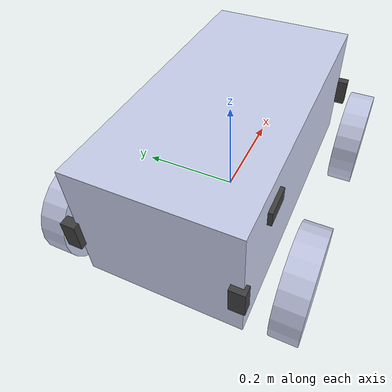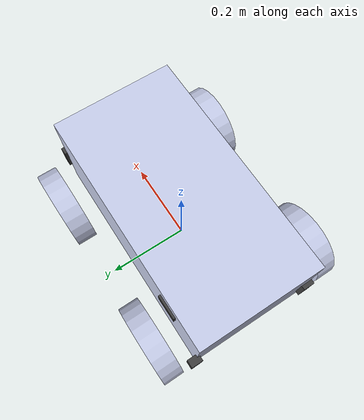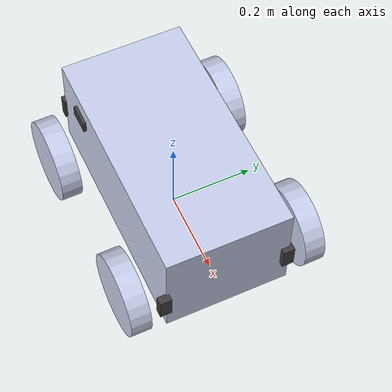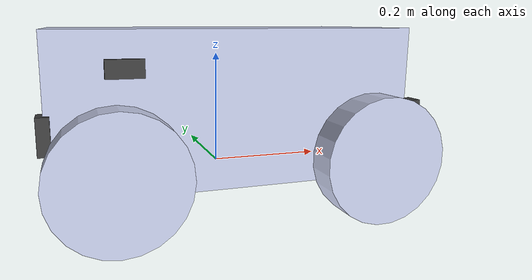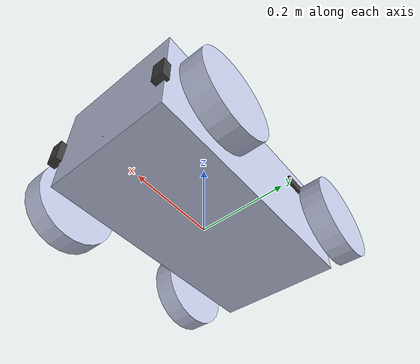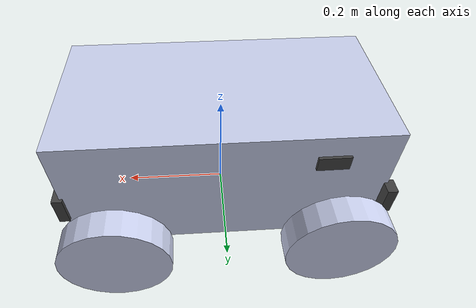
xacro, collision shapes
<?xml version="1.0"?>

<robot name="ebot" xmlns:xacro="http://www.ros.org/wiki/xacro">
<xacro:include filename="$(find autobot_simulation)/urdf/ebot.gazebo" />

<!-- macros for calculating inertia -->

<xacro:property name="base_mass" value="46.034" />
<xacro:property name="wheel_mass" value="2.637" />

<xacro:macro name="box_inertia" params="b_mass b_x b_y b_z">
        <mass value="${b_mass}"/>
        <inertia  ixx="${b_mass*(b_y*b_y+b_z*b_z)/12}" ixy = "0" ixz = "0"
                  iyy="${b_mass*(b_x*b_x+b_z*b_z)/12}" iyz = "0"
                  izz="${b_mass*(b_x*b_x+b_y*b_y)/12}"/>
</xacro:macro>

<xacro:macro name="cylinder_inertia" params="c_mass r l">
        <mass value="${c_mass}"/>
        <inertia  ixx="${c_mass*(3*r*r+l*l)/12}" ixy = "0" ixz = "0"
                  iyy="${c_mass*(3*r*r+l*l)/12}" iyz = "0"
                  izz="${c_mass*(r*r)/2}" />
</xacro:macro>

<!--   base of the robot -->

<link name="dummy"> </link>

  <link
    name="ebot_base">
    <inertial>
      <origin xyz="0 0.0 0.12" rpy="0 0 0" />
      <xacro:box_inertia b_mass="${base_mass}" b_x="0.585" b_y="0.30" b_z="0.25"/>
    </inertial>
    <visual>
      <origin
        xyz="0 0 0"
        rpy="0 0 0" />
      <geometry>
        <mesh
          filename="package://autobot_simulation/models/bot/chassis.STL" />
      </geometry>
      <material
        name="">
        <color
          rgba="0.79216 0.81961 0.93333 1" />
      </material>
    </visual>
    <collision>
    <origin
        xyz="0 0.0 0.12"
        rpy="0 0 0" />
      <geometry>
     <box size="0.585 0.30 0.25"/>
      </geometry>
    </collision>
  </link>

<!-- wheels -->
<xacro:property name="wheel_inertia">
    <xacro:cylinder_inertia c_mass="${wheel_mass}" r = "0.1" l="0.05"/>   <!--  mass radius length of a wheel -->
</xacro:property>

<joint name="dummy_joint" type="fixed">
  <parent link="dummy"/>
  <child link="ebot_base"/>
  <origin xyz = "0 0 0"/>
</joint>

<!-- front wheel right -->

  <link
    name="FWR">
    <inertial>
      <origin
        xyz="6.6592E-05 0.025016 -1.3483E-06"
        rpy="0 0 0" />
      <xacro:insert_block name="wheel_inertia" />

    </inertial>
    <visual>
      <origin
        xyz="0 0 0"
        rpy="0 0 0" />
      <geometry>
        <mesh
          filename="package://autobot_simulation/models/bot/FWR.STL" />
      </geometry>
      <material
        name="">
        <color
          rgba="0.79216 0.81961 0.93333 1" />
      </material>
    </visual>
    <collision>
      <origin
         xyz="0 0.025 0"
        rpy="1.57 1.57 0" />
      <geometry>
         <cylinder length="0.05" radius="0.1"/>
      </geometry>
    </collision>
  </link>
  <joint
    name="FWRJ"
    type="continuous">
    <origin
      xyz="0.202539503068943 -0.189027702306049 0.0449999999999943"
      rpy="-3.14159265358979 0.911096362238563 0.00679706827343889" />
    <parent
      link="ebot_base" />
    <child
      link="FWR" />
    <axis
      xyz="0 -1 0" />
  </joint>

<!-- front wheel left -->
  <link
    name="FWL">
    <inertial>
      <origin
        xyz="6.6594E-05 0.025016 -1.349E-06"
        rpy="0 0 0" />
           <xacro:insert_block name="wheel_inertia" />
    </inertial>
    <visual>
      <origin
        xyz="0 0 0"
        rpy="0 0 0" />
      <geometry>
        <mesh
          filename="package://autobot_simulation/models/bot/FWL.STL" />
      </geometry>
      <material
        name="">
        <color
          rgba="0.79216 0.81961 0.93333 1" />
      </material>
    </visual>
    <collision>
      <origin
         xyz="0 0.025 0"
        rpy="1.57 1.57 0" />
      <geometry>
         <cylinder length="0.05" radius="0.1"/>
      </geometry>
    </collision>
  </link>
  <joint
    name="FWLJ"
    type="continuous">
    <origin
      xyz="0.199948480594093 0.192163491981716 0.0450000000000047"
      rpy="0 0 0.00679706827344463" />
    <parent
      link="ebot_base" />
    <child
      link="FWL" />
    <axis
      xyz="0 1 0" />
  </joint>

<!--   rear wheel right -->
  <link
    name="RWR">
    <inertial>
      <origin
        xyz="6.6592E-05 0.025016 -1.3483E-06"
        rpy="0 0 0" />
           <xacro:insert_block name="wheel_inertia" />
    </inertial>
    <visual>
      <origin
        xyz="0 0 0"
        rpy="0 0 0" />
      <geometry>
        <mesh
          filename="package://autobot_simulation/models/bot/RWR.STL" />
      </geometry>
      <material
        name="">
        <color
          rgba="0.79216 0.81961 0.93333 1" />
      </material>
    </visual>
   <collision>
      <origin
         xyz="0 0.025 0"
        rpy="1.57 1.57 0" />
      <geometry>
         <cylinder length="0.05" radius="0.1"/>
      </geometry>
    </collision>
  </link>
  <joint
    name="RWRJ"
    type="continuous">
    <origin
      xyz="-0.197451256939211 -0.191746508680447 0.044999999999993"
      rpy="-3.14159265358979 0.544912084409921 0.00679706827344312" />
    <parent
      link="ebot_base" />
    <child
      link="RWR" />
    <axis
      xyz="0 -1 0" />
  </joint>

<!--   rear wheel left -->
  <link
    name="RWL">
    <inertial>
      <origin
        xyz="6.6594E-05 0.025016 -1.349E-06"
        rpy="0 0 0" />
        <xacro:insert_block name="wheel_inertia" />
    </inertial>
    <visual>
      <origin
        xyz="0 0 0"
        rpy="0 0 0" />
      <geometry>
        <mesh
          filename="package://autobot_simulation/models/bot/RWL.STL" />
      </geometry>
      <material
        name="">
        <color
          rgba="0.79216 0.81961 0.93333 1" />
      </material>
    </visual>
   <collision>
      <origin
         xyz="0 0.025 0"
        rpy="1.57 1.57 0" />
      <geometry>
         <cylinder length="0.05" radius="0.1"/>
      </geometry>
    </collision>
  </link>
  <joint
    name="RWLJ"
    type="continuous">
    <origin
      xyz="-0.200042279414009 0.189444685607321 0.0449999999999969"
      rpy="0 0 0.00679706827344463" />
    <parent
      link="ebot_base" />
    <child
      link="RWL" />
    <axis
      xyz="0 1 0" />
  </joint>

<!-- Sensors link -->

<!-- intel real sense -->

  <!-- Intel real sense Camera for 3D mapping-->
  <joint name="realsensejoint" type="fixed">
    <axis xyz="0 0 0" />
    <origin xyz="0.277944460576403 0.00208437301780086 0.0230507258091751" rpy="0 0 0"/>
    <parent link="ebot_base"/>
    <child link="camera_link"/>
  </joint>

  <link name="camera_link">
    <collision>
      <origin xyz="0.02 0 0" rpy="0 0 0"/>
      <geometry>0
        <box size="0.001 0.001 0.001"/>
      </geometry>
    </collision>

    <visual>
      <origin xyz="0 0 0" rpy="1.5707 0 1.5707"/>
      <geometry>
        <mesh filename="package://autobot_simulation/models/bot/NAVRS.STL" />
      </geometry>
    </visual>

    <inertial>
      <mass value="1e-5" />
      <origin xyz="0 0 0" rpy="0 0 0"/>
      <inertia ixx="0" ixy="0" ixz="0" iyy="0" iyz="0" izz="0" />
    </inertial>
  </link>

  <joint name="camera_optical_joint" type="fixed">
    <origin xyz="0 0 0" rpy="${-pi/2} 0 ${-pi/2}"/>
    <parent link="camera_link"/>
    <child link="camera_rgb_frame"/>
  </joint>

  <link name="camera_rgb_frame">
  </link>

  <joint name="camera_depth_joint" type="fixed">
    <origin xyz="0 0 0" rpy="${-pi/2} 0 ${-pi/2}"/>
    <parent link="camera_link"/>
    <child link="camera_depth_frame"/>
  </joint>

    <link name="camera_depth_frame">
  </link>

<!-- intel real sense front-->

<!-- GPS antenna -->

 <!--  Rear real sense -->

<!-- LIDAR -->
<link name="laser">
    <origin rpy="0 0 0" xyz="0 0 0"/>
    <inertial>
      <mass value="0.09"/>
      <inertia ixx="4.275e-05" ixy="0" ixz="0" iyy="4.275e-05" iyz="0" izz="5.5125e-05"/>
    </inertial>
    <collision>
      <origin rpy="0 0 0" xyz="0 0 0"/>
      <geometry>
        <cylinder length="0.040" radius="0.030"/>
      </geometry>
    </collision>
    <visual>
      <origin rpy="0 0 0" xyz="0 0 0"/>
      <geometry>
        <cylinder length="0.040" radius="0.030"/>
      </geometry>
    </visual>
  </link>

  <joint name="rplidar_joint" type="fixed">
    <axis xyz="0 1 0"/>
    <origin xyz="0.255540836099039 0 0.18"
      rpy="0 0 0.00679706827344463" />

    <parent link="ebot_base"/>
    <child link="laser"/>
    <limit effort="1000" lower="0" upper="6.28" velocity="100"/>
    <axis rpy="0 0 0" xyz="0.02 0 0.178"/>
    <joint_properties damping="5.0" friction="1.0"/>
  </joint>

<!-- front ultrasonic sensor 1-->
  <link
    name="FUS1">
    <inertial>
      <origin
        xyz="-0.00265918092876655 2.08166817117217E-17 0.0100193625139959"
        rpy="0 0 0" />
      <mass
        value="0.0152532066391543" />
      <inertia
        ixx="4.77814992940302E-06"
        ixy="-2.01819824421892E-21"
        ixz="2.64657807499124E-08"
        iyy="1.003384637723E-06"
        iyz="-8.80528876343328E-21"
        izz="4.55679776636487E-06" />
    </inertial>
    <visual>
      <origin
        xyz="0 0 0"
        rpy="0 0 0" />
      <geometry>
        <mesh
          filename="package://autobot_simulation/models/bot/FUS1.STL" />
      </geometry>
      <material
        name="">
        <color
          rgba="0.250980392156863 0.250980392156863 0.250980392156863 1" />
      </material>
    </visual>
    <collision>
      <origin
        xyz="0 0 0"
        rpy="0 0 0" />
      <geometry>
          <box size="0.019 0.057 0.028"/>
      </geometry>
    </collision>
  </link>
  <joint
    name="FUS1J"
    type="fixed">
    <origin
      xyz="0.297825909825268 -0.157279305693451 0.0977263808983278"
      rpy="-1.5707963267949 0 0.00679706827344463" />
    <parent
      link="ebot_base" />
    <child
      link="FUS1" />
    <axis
      xyz="0 0 0" />
  </joint>

<!-- front ultrasonic sensor 2 -->
  <link
    name="FUS2">
    <inertial>
      <origin
        xyz="-0.0026592 1.9949E-17 0.010019"
        rpy="0 0 0" />
      <mass
        value="0.015253" />
      <inertia
        ixx="4.7781E-06"
        ixy="-2.0925E-21"
        ixz="2.6466E-08"
        iyy="1.0034E-06"
        iyz="-9.4695E-21"
        izz="4.5568E-06" />
    </inertial>
    <visual>
      <origin
        xyz="0 0 0"
        rpy="0 0 0" />
      <geometry>
        <mesh
          filename="package://autobot_simulation/models/bot/FUS2.STL" />
      </geometry>
      <material
        name="">
        <color
          rgba="0.25098 0.25098 0.25098 1" />
      </material>
    </visual>
    <collision>
      <origin
        xyz="0 0 0"
        rpy="0 0 0" />
      <geometry>
           <box size="0.019 0.057 0.028"/>
      </geometry>
    </collision>
  </link>
  <joint
    name="FUS2J"
    type="fixed">
    <origin
      xyz="0.295786805044471 0.142713764312663 0.0977263808983286"
      rpy="-1.5707963267949 0 0.00679706827344463" />
    <parent
      link="ebot_base" />
    <child
      link="FUS2" />
    <axis
      xyz="0 0 0" />
  </joint>

<!--   front ultrasonic sensor 3 -->
  <link
    name="FUS3">
    <inertial>
      <origin
        xyz="-0.0026592 5.5511E-17 0.010019"
        rpy="0 0 0" />
      <mass
        value="0.015253" />
      <inertia
        ixx="4.7781E-06"
        ixy="2.7832E-20"
        ixz="2.6466E-08"
        iyy="1.0034E-06"
        iyz="1.4502E-20"
        izz="4.5568E-06" />
    </inertial>
    <visual>
      <origin
        xyz="0 0 0"
        rpy="0 0 0" />
      <geometry>
        <mesh
          filename="package://autobot_simulation/models/bot/FUS3.STL" />
      </geometry>
      <material
        name="">
        <color
          rgba="0.25098 0.25098 0.25098 1" />
      </material>
    </visual>
    <collision>
      <origin
        xyz="0 0 0"
        rpy="0 0 0" />
      <geometry>
           <box size="0.019 0.057 0.028"/>
      </geometry>
    </collision>
  </link>
  <joint
    name="FUS3J"
    type="fixed">
    <origin
      xyz="0.27274874909921 -0.0749478536996718 0.0424745013517897"
      rpy="0 0.785398163397449 0.00679706827344116" />
    <parent
      link="ebot_base" />
    <child
      link="FUS3" />
    <axis
      xyz="0 0 0" />
  </joint>

<!--   front ultrasonic sensor 4 -->
  <link
    name="FUS4">
    <inertial>
      <origin
        xyz="-0.00265918092876644 6.93889390390723E-17 0.0100193625139959"
        rpy="0 0 0" />
      <mass
        value="0.0152532066391543" />
      <inertia
        ixx="4.77814992940302E-06"
        ixy="2.8163959262392E-20"
        ixz="2.64657807499109E-08"
        iyy="1.003384637723E-06"
        iyz="2.09456577324828E-20"
        izz="4.55679776636487E-06" />
    </inertial>
    <visual>
      <origin
        xyz="0 0 0"
        rpy="0 0 0" />
      <geometry>
        <mesh
          filename="package://autobot_simulation/models/bot/FUS4.STL" />
      </geometry>
      <material
        name="">
        <color
          rgba="0.250980392156863 0.250980392156863 0.250980392156863 1" />
      </material>
    </visual>
    <collision>
      <origin
        xyz="0 0 0"
        rpy="0 0 0" />
      <geometry>
           <box size="0.019 0.057 0.028"/>
      </geometry>
    </collision>
  </link>
  <joint
    name="FUS4J"
    type="fixed">
    <origin
      xyz="0.271702008645067 0.0790485889034664 0.0424745013517894"
      rpy="0 0.785398163397449 0.00679706827344116" />
    <parent
      link="ebot_base" />
    <child
      link="FUS4" />
    <axis
      xyz="0 0 0" />
  </joint>

<!--   Rear ultra sonic sensor 5 -->
  <link
    name="RUS5">
    <inertial>
      <origin
        xyz="-0.0026592 2.6021E-17 0.010019"
        rpy="0 0 0" />
      <mass
        value="0.015253" />
      <inertia
        ixx="4.7781E-06"
        ixy="-1.9723E-21"
        ixz="2.6466E-08"
        iyy="1.0034E-06"
        iyz="-7.7105E-21"
        izz="4.5568E-06" />
    </inertial>
    <visual>
      <origin
        xyz="0 0 0"
        rpy="0 0 0" />
      <geometry>
        <mesh
          filename="package://autobot_simulation/models/bot/RUS5.STL" />
      </geometry>
      <material
        name="">
        <color
          rgba="0.25098 0.25098 0.25098 1" />
      </material>
    </visual>
    <collision>
      <origin
        xyz="0 0 0"
        rpy="0 0 0" />
      <geometry>
           <box size="0.019 0.057 0.028"/>
      </geometry>
    </collision>
  </link>
  <joint
    name="RUS5J"
    type="fixed">
    <origin
      xyz="-0.29532868617037 0.157696288994793 0.0977029437251515"
      rpy="-1.5707963267949 0 -3.13479558531634" />
    <parent
      link="ebot_base" />
    <child
      link="RUS5" />
    <axis
      xyz="0 0 0" />
  </joint>

<!--   Rear ultra sonic sensor 6 -->
  <link
    name="RUS6">
    <inertial>
      <origin
        xyz="-0.00265918092876644 2.34187669256869E-17 0.0100193625139959"
        rpy="0 0 0" />
      <mass
        value="0.0152532066391543" />
      <inertia
        ixx="4.77814992940302E-06"
        ixy="-1.34867897211379E-21"
        ixz="2.64657807499114E-08"
        iyy="1.003384637723E-06"
        iyz="-1.29818552470248E-20"
        izz="4.55679776636487E-06" />
    </inertial>
    <visual>
      <origin
        xyz="0 0 0"
        rpy="0 0 0" />
      <geometry>
        <mesh
          filename="package://autobot_simulation/models/bot/RUS6.STL" />
      </geometry>
      <material
        name="">
        <color
          rgba="0.250980392156863 0.250980392156863 0.250980392156863 1" />
      </material>
    </visual>
    <collision>
      <origin
        xyz="0 0 0"
        rpy="0 0 0" />
      <geometry>
           <box size="0.019 0.057 0.028"/>
      </geometry>
    </collision>
  </link>
  <joint
    name="RUS6J"
    type="fixed">
    <origin
      xyz="-0.293289581389573 -0.14229678101132 0.0977029437251508"
      rpy="-1.5707963267949 0 -3.13479558531634" />
    <parent
      link="ebot_base" />
    <child
      link="RUS6" />
    <axis
      xyz="0 0 0" />
  </joint>

<!--   Right ultra sonic sensor 7 -->
  <link
    name="RHUS7">
    <inertial>
      <origin
        xyz="-0.00265918092876641 1.23570598198341E-12 0.0100193625139959"
        rpy="0 0 0" />
      <mass
        value="0.0152532066391543" />
      <inertia
        ixx="4.77814992940302E-06"
        ixy="3.27217392921119E-18"
        ixz="2.64657807499107E-08"
        iyy="1.003384637723E-06"
        iyz="4.38229124201629E-16"
        izz="4.55679776636487E-06" />
    </inertial>
    <visual>
      <origin
        xyz="0 0 0"
        rpy="0 0 0" />
      <geometry>
        <mesh
          filename="package://autobot_simulation/models/bot/RHUS7.STL" />
      </geometry>
      <material
        name="">
        <color
          rgba="0.250980392156863 0.250980392156863 0.250980392156863 1" />
      </material>
    </visual>
    <collision>
      <origin
        xyz="0 0 0"
        rpy="0 0 0" />
      <geometry>
           <box size="0.019 0.057 0.028"/>
      </geometry>
    </collision>
  </link>
  <joint
    name="RHUS7J"
    type="fixed">
    <origin
      xyz="-0.17860231149778 -0.148017381955971 0.189449821416576"
      rpy="0 0 -1.56399925852145" />
    <parent
      link="ebot_base" />
    <child
      link="RHUS7" />
    <axis
      xyz="0 0 0" />
  </joint>

<!--   Right ultra sonicsensor 9 -->
  <link
    name="RHUS9">
    <inertial>
      <origin
        xyz="-0.0026592 6.9389E-18 0.010019"
        rpy="0 0 0" />
      <mass
        value="0.015253" />
      <inertia
        ixx="4.7781E-06"
        ixy="1.6008E-20"
        ixz="2.6466E-08"
        iyy="1.0034E-06"
        iyz="-1.185E-20"
        izz="4.5568E-06" />
    </inertial>
    <visual>
      <origin
        xyz="0 0 0"
        rpy="0 0 0" />
      <geometry>
        <mesh
          filename="package://autobot_simulation/models/bot/RHUS9.STL" />
      </geometry>
      <material
        name="">
        <color
          rgba="0.25098 0.25098 0.25098 1" />
      </material>
    </visual>
    <collision>
      <origin
        xyz="0 0 0"
        rpy="0 0 0" />
      <geometry>
           <box size="0.019 0.057 0.028"/>
      </geometry>
    </collision>
  </link>
  <joint
    name="RHUS9J"
    type="fixed">
    <origin
      xyz="0.141804076845343 -0.0977216096162414 0.196076309026378"
      rpy="-0.00186883076605492 0.123098458475999 -0.786255211903501" />
    <parent
      link="ebot_base" />
    <child
      link="RHUS9" />
    <axis
      xyz="0 0 0" />
  </joint>

<!--   Left ultra sonic sensor 9 -->
  <link
    name="LHUS9">
    <inertial>
      <origin
        xyz="-0.00265918092876642 -1.2353174039248E-12 0.0100193625139958"
        rpy="0 0 0" />
      <mass
        value="0.0152532066391543" />
      <inertia
        ixx="4.77814992940302E-06"
        ixy="-3.2538981368926E-18"
        ixz="2.64657807499116E-08"
        iyy="1.003384637723E-06"
        iyz="-4.38135627183199E-16"
        izz="4.55679776636487E-06" />
    </inertial>
    <visual>
      <origin
        xyz="0 0 0"
        rpy="0 0 0" />
      <geometry>
        <mesh
          filename="package://autobot_simulation/models/bot/LHUS9.STL" />
      </geometry>
      <material
        name="">
        <color
          rgba="0.250980392156863 0.250980392156863 0.250980392156863 1" />
      </material>
    </visual>
    <collision>
      <origin
        xyz="0 0 0"
        rpy="0 0 0" />
      <geometry>
           <box size="0.019 0.057 0.028"/>
      </geometry>
    </collision>
  </link>
  <joint
    name="LHUS9J"
    type="fixed">
    <origin
      xyz="-0.180600634182961 0.14597582665002 0.189449821416576"
      rpy="0 0 1.57759339506834" />
    <parent
      link="ebot_base" />
    <child
      link="LHUS9" />
    <axis
      xyz="0 0 0" />
  </joint>

<!--   left ultra sonic sensor 10 -->
  <link
    name="LHUS10">
    <inertial>
      <origin
        xyz="-0.0026592 -2.0817E-17 0.010019"
        rpy="0 0 0" />
      <mass
        value="0.015253" />
      <inertia
        ixx="4.7781E-06"
        ixy="1.1539E-20"
        ixz="2.6466E-08"
        iyy="1.0034E-06"
        iyz="-1.2651E-20"
        izz="4.5568E-06" />
    </inertial>
    <visual>
      <origin
        xyz="0 0 0"
        rpy="0 0 0" />
      <geometry>
        <mesh
          filename="package://autobot_simulation/models/bot/LHUS10.STL" />
      </geometry>
      <material
        name="">
        <color
          rgba="0.25098 0.25098 0.25098 1" />
      </material>
    </visual>
    <collision>
      <origin
        xyz="0 0 0"
        rpy="0 0 0" />
      <geometry>
           <box size="0.019 0.057 0.028"/>
      </geometry>
    </collision>
  </link>
  <joint
    name="LHUS10J"
    type="fixed">
    <origin
      xyz="0.14045985551618 0.10004021562239 0.196076309026377"
      rpy="0.00186883076604301 0.123098458475999 0.799849348450393" />
    <parent
      link="ebot_base" />
    <child
      link="LHUS10" />
    <axis
      xyz="0 0 0" />
  </joint>

<!-- IMU -->
  <link name="imu_link">
    <collision>
      <origin xyz="0 0 0" rpy="0 0 0"/>
      <geometry>
        <box size="0.02 0.015 0.008"/>
      </geometry>
    </collision>

    <visual>
      <origin xyz="0 0 0" rpy="0 0 0"/>
    <geometry>
        <box size="0.02 0.015 0.008"/>
      </geometry>
    </visual>

    <inertial>
      <mass value="1e-5" />
      <origin xyz="0 0 0" rpy="0 0 0"/>
      <inertia ixx="0" ixy="0" ixz="0" iyy="0" iyz="0" izz="0" />
    </inertial>
  </link>

  <joint
    name="imujoint"
    type="fixed">
    <origin
      xyz="0 0 0.2"
      rpy="0 0 0" />
    <parent
      link="ebot_base" />
    <child
      link="imu_link" />
    <axis
      xyz="0 0 0" />
  </joint>

</robot>
